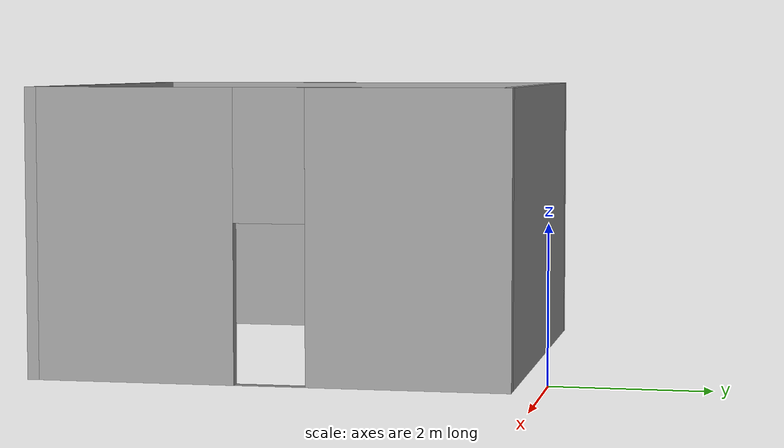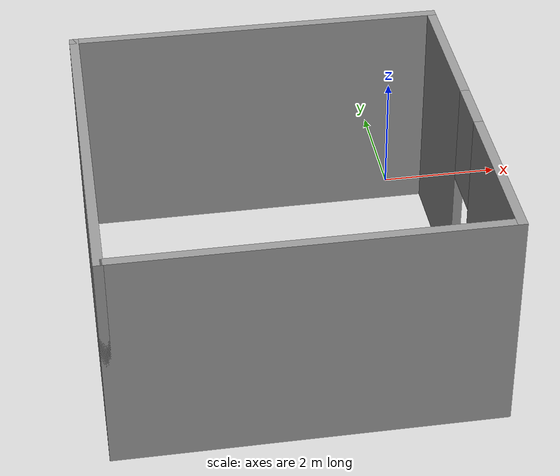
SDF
<?xml version='1.0'?>
<sdf version='1.6'>
  <model name='theatre_feet_model'>
    <pose>-2.389 -3.2315 0 0 -0 0</pose>
    <link name='Wall_1'>
      <collision name='Wall_1_Collision'>
        <geometry>
          <box>
            <size>6.096 0.15 3.658</size>
          </box>
        </geometry>
        <pose>0 0 1.829 0 -0 0</pose>
      </collision>
      <visual name='Wall_1_Visual'>
        <pose>0 0 1.829 0 -0 0</pose>
        <geometry>
          <box>
            <size>6.096 0.15 3.658</size>
          </box>
        </geometry>
        <material>
          <script>
            <uri>file://media/materials/scripts/gazebo.material</uri>
            <name>Gazebo/Grey</name>
          </script>
          <ambient>1 1 1 1</ambient>
        </material>
        <meta>
          <layer>0</layer>
        </meta>
      </visual>
      <pose>0 2.7895 0 0 -0 0</pose>
    </link>
    <link name='Wall_3'>
      <pose>2.973 -0.1835 0 0 -0 -1.5708</pose>
      <visual name='Wall_3_Visual_0'>
        <pose>-1.78092 0 1.829 0 -0 0</pose>
        <geometry>
          <box>
            <size>2.53417 0.15 3.658</size>
          </box>
        </geometry>
        <material>
          <script>
            <uri>file://media/materials/scripts/gazebo.material</uri>
            <name>Gazebo/Grey</name>
          </script>
          <ambient>1 1 1 1</ambient>
        </material>
        <meta>
          <layer>0</layer>
        </meta>
      </visual>
      <collision name='Wall_3_Collision_0'>
        <geometry>
          <box>
            <size>2.53417 0.15 3.658</size>
          </box>
        </geometry>
        <pose>-1.78092 0 1.829 0 -0 0</pose>
      </collision>
      <visual name='Wall_3_Visual_1'>
        <pose>1.71708 0 1.829 0 -0 0</pose>
        <geometry>
          <box>
            <size>2.66183 0.15 3.658</size>
          </box>
        </geometry>
        <material>
          <script>
            <uri>file://media/materials/scripts/gazebo.material</uri>
            <name>Gazebo/Grey</name>
          </script>
          <ambient>1 1 1 1</ambient>
        </material>
        <meta>
          <layer>0</layer>
        </meta>
      </visual>
      <collision name='Wall_3_Collision_1'>
        <geometry>
          <box>
            <size>2.66183 0.15 3.658</size>
          </box>
        </geometry>
        <pose>1.71708 0 1.829 0 -0 0</pose>
      </collision>
      <visual name='Wall_3_Visual_2'>
        <pose>-0.063831 0 0 0 -0 0</pose>
        <geometry>
          <box>
            <size>0.9 0.15 0</size>
          </box>
        </geometry>
        <material>
          <script>
            <uri>file://media/materials/scripts/gazebo.material</uri>
            <name>Gazebo/Grey</name>
          </script>
          <ambient>1 1 1 1</ambient>
        </material>
        <meta>
          <layer>0</layer>
        </meta>
      </visual>
      <collision name='Wall_3_Collision_2'>
        <geometry>
          <box>
            <size>0.9 0.15 0</size>
          </box>
        </geometry>
        <pose>-0.063831 0 0 0 -0 0</pose>
      </collision>
      <visual name='Wall_3_Visual_3'>
        <pose>-0.063831 0 2.829 0 -0 0</pose>
        <geometry>
          <box>
            <size>0.9 0.15 1.658</size>
          </box>
        </geometry>
        <material>
          <script>
            <uri>file://media/materials/scripts/gazebo.material</uri>
            <name>Gazebo/Grey</name>
          </script>
          <ambient>1 1 1 1</ambient>
        </material>
        <meta>
          <layer>0</layer>
        </meta>
      </visual>
      <collision name='Wall_3_Collision_3'>
        <geometry>
          <box>
            <size>0.9 0.15 1.658</size>
          </box>
        </geometry>
        <pose>-0.063831 0 2.829 0 -0 0</pose>
      </collision>
    </link>
    <link name='Wall_5'>
      <collision name='Wall_5_Collision'>
        <geometry>
          <box>
            <size>6.096 0.15 3.658</size>
          </box>
        </geometry>
        <pose>0 0 1.829 0 -0 0</pose>
      </collision>
      <visual name='Wall_5_Visual'>
        <pose>0 0 1.829 0 -0 0</pose>
        <geometry>
          <box>
            <size>6.096 0.15 3.658</size>
          </box>
        </geometry>
        <material>
          <script>
            <uri>file://media/materials/scripts/gazebo.material</uri>
            <name>Gazebo/Grey</name>
          </script>
          <ambient>1 1 1 1</ambient>
        </material>
        <meta>
          <layer>0</layer>
        </meta>
      </visual>
      <pose>0 -3.1565 0 0 -0 0</pose>
    </link>
    <link name='Wall_7'>
      <collision name='Wall_7_Collision'>
        <geometry>
          <box>
            <size>6.096 0.15 3.658</size>
          </box>
        </geometry>
        <pose>0 0 1.829 0 -0 0</pose>
      </collision>
      <visual name='Wall_7_Visual'>
        <pose>0 0 1.829 0 -0 0</pose>
        <geometry>
          <box>
            <size>6.096 0.15 3.658</size>
          </box>
        </geometry>
        <material>
          <script>
            <uri>file://media/materials/scripts/gazebo.material</uri>
            <name>Gazebo/Grey</name>
          </script>
          <ambient>1 1 1 1</ambient>
        </material>
        <meta>
          <layer>0</layer>
        </meta>
      </visual>
      <pose>-2.973 -0.1835 0 0 -0 -1.5708</pose>
    </link>
    <static>1</static>
  </model>
</sdf>
